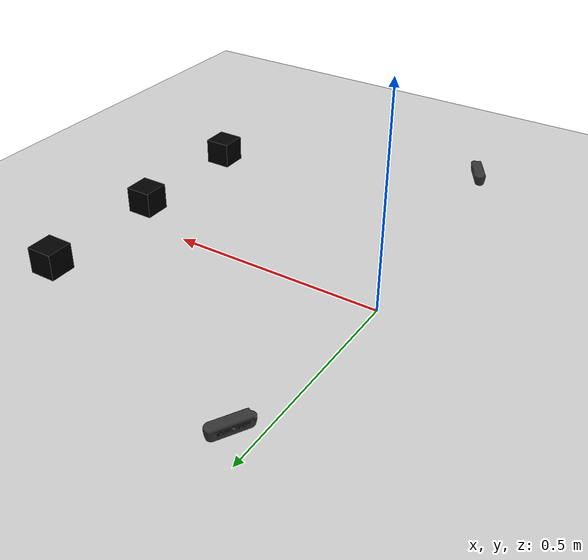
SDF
<sdf version='1.10'>
  <world name='panda_world'>
    <physics name='1ms' type='ignored'>
      <max_step_size>0.001</max_step_size>
      <real_time_factor>1</real_time_factor>
      <real_time_update_rate>1000</real_time_update_rate>
    </physics>
    <plugin
      filename="gz-sim-sensors-system"
      name="gz::sim::systems::Sensors">
      <render_engine>ogre2</render_engine>
    </plugin>

    <plugin filename="gz-sim-forcetorque-system"
        name="gz::sim::systems::ForceTorque"/>
    <plugin name='ignition::gazebo::systems::Physics' filename='ignition-gazebo-physics-system'/>
    <plugin name='ignition::gazebo::systems::UserCommands' filename='ignition-gazebo-user-commands-system'/>
    <plugin name='ignition::gazebo::systems::SceneBroadcaster' filename='ignition-gazebo-scene-broadcaster-system'/>
    <gui fullscreen='false'>
      <plugin name='3D View' filename='GzScene3D'>
        <ignition-gui>
          <title>3D View</title>
          <property type='bool' key='showTitleBar'>false</property>
          <property type='string' key='state'>docked</property>
        </ignition-gui>
        <engine>ogre2</engine>
        <scene>scene</scene>
        <ambient_light>0.4 0.4 0.4</ambient_light>
        <background_color>0.8 0.8 0.8</background_color>
        <camera_pose>2 2 2 0 0.5 -2.5</camera_pose>
      </plugin>
      <plugin name='World control' filename='WorldControl'>
        <ignition-gui>
          <title>World control</title>
          <property type='bool' key='showTitleBar'>false</property>
          <property type='bool' key='resizable'>false</property>
          <property type='double' key='height'>72</property>
          <property type='double' key='width'>121</property>
          <property type='double' key='z'>1</property>
          <property type='string' key='state'>floating</property>
          <anchors target='3D View'>
            <line own='left' target='left'/>
            <line own='bottom' target='bottom'/>
          </anchors>
        </ignition-gui>
        <play_pause>true</play_pause>
        <step>true</step>
        <start_paused>true</start_paused>
      </plugin>

    </gui>
    <gravity>0 0 -9.81</gravity>
    <magnetic_field>5.5644999999999998e-06 2.2875799999999999e-05 -4.2388400000000002e-05</magnetic_field>
    <atmosphere type='adiabatic'/>
    <scene>
      <ambient>0.400000006 0.400000006 0.400000006 1</ambient>
      <background>0.699999988 0.699999988 0.699999988 1</background>
      <shadows>true</shadows>
    </scene>

  <model name='ground_plane'>
      <static>true</static>
      <link name='link'>
        <collision name='collision'>
          <geometry>
            <plane>
              <normal>0 0 1</normal>
              <size>100 100</size>
            </plane>
          </geometry>
          <surface>
            <friction>
              <ode/>
            </friction>
            <bounce/>
            <contact/>
          </surface>
        </collision>
        <visual name='visual'>
          <geometry>
            <plane>
              <normal>0 0 1</normal>
              <size>100 100</size>
            </plane>
          </geometry>
          <material>
            <ambient>0.800000012 0.800000012 0.800000012 1</ambient>
            <diffuse>0.800000012 0.800000012 0.800000012 1</diffuse>
            <specular>0.800000012 0.800000012 0.800000012 1</specular>
          </material>
        </visual>
        <pose>0 0 0 0 0 0</pose>
        <inertial>
          <pose>0 0 0 0 0 0</pose>
          <mass>1</mass>
          <inertia>
            <ixx>1</ixx>
            <ixy>0</ixy>
            <ixz>0</ixz>
            <iyy>1</iyy>
            <iyz>0</iyz>
            <izz>1</izz>
          </inertia>
        </inertial>
        <enable_wind>false</enable_wind>
      </link>
      <pose>0 0 0 0 0 0</pose>
      <self_collide>false</self_collide>
    </model>

  <model name='object'>
      <plugin
        filename="gz-sim-pose-publisher-system"
        name="gz::sim::systems::PosePublisher">
        <publish_link_pose>false</publish_link_pose>
        <publish_collision_pose>false</publish_collision_pose>
        <publish_visual_pose>false</publish_visual_pose>
        <publish_nested_model_pose>true</publish_nested_model_pose>
        <update_rate>60</update_rate>
    </plugin>
      <pose>0 0.5 0.1 1.57 0 1.05</pose>
      <link name='link'>
        <pose>0 0 0 0 0 0</pose>
        <inertial>
          <mass>0.1</mass>
          <inertia>
            <ixx>0.000166667</ixx>
            <iyy>0.000166667</iyy>
            <izz>0.000166667</izz>
            <ixy>0</ixy>
            <ixz>0</ixz>
            <iyz>0</iyz>
          </inertia>
          <pose>0 0 0 0 0 0</pose>
        </inertial>

        <visual name='visual'>
          <geometry>
            <mesh>
              <uri>model://d435/meshes/d435.dae</uri>
              <scale>1 1 1</scale>
            </mesh>
          </geometry>
          <material>
            <ambient>0.2 0.2 0.2 1</ambient>
            <diffuse>0.2 0.2 0.2 1</diffuse>
            <specular>0.1 0.1 0.1 1</specular>
            <emissive>0 0 0 1</emissive>
          </material>
        </visual>
        <sensor name='depth_camera1' type='depth'>
          <pose>0 0 0 0 -1.57 -1.57</pose>
          <topic>depth_camera_1</topic>

          <update_rate>30</update_rate>
          <enable_metrics>false</enable_metrics>
          <camera>
            <pose>0 0 0 0 0 0</pose>
            <horizontal_fov>1.05</horizontal_fov>
            <image>
              <width>640</width>
              <height>480</height>
              <format>R_FLOAT32</format>
              <anti_aliasing>4</anti_aliasing>
            </image>
            <clip>
              <near>0.1</near>
              <far>10</far>
            </clip>
            <save enabled='false'>
              <path>__default__</path>
            </save>
            <noise>
              <type>none</type>
            </noise>
            <distortion>
              <k1>0</k1>
              <k2>0</k2>
              <k3>0</k3>
              <p1>0</p1>
              <p2>0</p2>
              <center>0.5 0.5</center>
            </distortion>
            <lens>
              <type>stereographic</type>
              <scale_to_hfov>true</scale_to_hfov>
              <cutoff_angle>1.57079632679</cutoff_angle>
              <env_texture_size>256</env_texture_size>
            </lens>
            <optical_frame_id>depth_optical_frame_1</optical_frame_id>
             <camera_info_topic>depth_camera_1/camera_info</camera_info_topic>
          </camera>
        </sensor>

         <sensor name="camera1" type="camera">
        <pose>0 0 0 0 -1.57 -1.57</pose>
        <update_rate>30</update_rate>
        <frame_id>depth_optical_frame_1</frame_id>
        <topic>/camera_1/image_raw</topic>
        <camera>
          <horizontal_fov>1.05</horizontal_fov>
          <image>
            <width>640</width>
            <height>480</height>
          </image>
          <clip>
            <near>0.1</near>
            <far>10.0</far>
          </clip>
          <noise>
            <type>gaussian</type>
            <mean>0.0</mean>
            <stddev>0.007</stddev>
          </noise>
          <lens>
            <type>custom</type>
            <scale_to_hfov>false</scale_to_hfov>
            <custom_function>
              <c1>1.1</c1>
              <c2>2.2</c2>
              <c3>3.3</c3>
              <f>1.2</f>
              <fun>sin</fun>
            </custom_function>
            <cutoff_angle>0.7505</cutoff_angle>
            <env_texture_size>128</env_texture_size>
            <intrinsics>
              <fx>280</fx>
              <fy>281</fy>
              <cx>162</cx>
              <cy>124</cy>
              <s>1.2</s>
            </intrinsics>
            <projection>
              <p_fx>282</p_fx>
              <p_fy>283</p_fy>
              <p_cx>163</p_cx>
              <p_cy>125</p_cy>
              <tx>1</tx>
              <ty>2</ty>
            </projection>
          </lens>
          <optical_frame_id>depth_optical_frame_1</optical_frame_id>
        </camera>
      </sensor>

        <enable_wind>false</enable_wind>
      </link>
      <static>true</static>
      <self_collide>false</self_collide>

      <plugin filename="gz-sim-label-system" name="gz::sim::systems::Label">
              <label>camera_1</label>
            </plugin>
    </model>

  <model name='object1'>
      <plugin
        filename="gz-sim-pose-publisher-system"
        name="gz::sim::systems::PosePublisher">
        <publish_link_pose>false</publish_link_pose>
        <publish_collision_pose>false</publish_collision_pose>
        <publish_visual_pose>false</publish_visual_pose>
        <publish_nested_model_pose>true</publish_nested_model_pose>
        <update_rate>60</update_rate>
      </plugin>
      <pose>0 -0.5 0.1 1.57 0 2.09</pose>
      <link name='link1'>
        <pose>0 0 0 0 0 0</pose>
        <inertial>
          <mass>0.1</mass>
          <inertia>
            <ixx>0.000166667</ixx>
            <iyy>0.000166667</iyy>
            <izz>0.000166667</izz>
            <ixy>0</ixy>
            <ixz>0</ixz>
            <iyz>0</iyz>
          </inertia>
          <pose>0 0 0 0 0 0</pose>
        </inertial>

        <visual name='visual'>
          <geometry>
            <mesh>
              <uri>model://d435/meshes/d435.dae</uri>
              <scale>1 1 1</scale>
            </mesh>
          </geometry>
          <material>
            <ambient>0.2 0.2 0.2 1</ambient>
            <diffuse>0.2 0.2 0.2 1</diffuse>
            <specular>0.1 0.1 0.1 1</specular>
            <emissive>0 0 0 1</emissive>
          </material>
        </visual>
        <sensor name='depth_camera2' type='depth_camera'>
          <pose>0 0 0 0 -1.57 -1.57</pose>
          <topic>depth_camera_2</topic>
          <update_rate>30</update_rate>
          <enable_metrics>false</enable_metrics>
          <camera>
            <pose>0 0 0 0 0 0</pose>
            <horizontal_fov>1.05</horizontal_fov>
            <image>
              <width>256</width>
              <height>256</height>
              <format>R_FLOAT32</format>
              <anti_aliasing>4</anti_aliasing>
            </image>
            <clip>
              <near>0.1</near>
              <far>10</far>
            </clip>
            <save enabled='false'>
              <path>__default__</path>
            </save>
            <noise>
              <type>none</type>
            </noise>
            <distortion>
              <k1>0</k1>
              <k2>0</k2>
              <k3>0</k3>
              <p1>0</p1>
              <p2>0</p2>
              <center>0.5 0.5</center>
            </distortion>
            <lens>
              <type>stereographic</type>
              <scale_to_hfov>true</scale_to_hfov>
              <cutoff_angle>1.57079632679</cutoff_angle>
              <env_texture_size>256</env_texture_size>
            </lens>
            <optical_frame_id>depth_optical_frame_2</optical_frame_id>
          </camera>
        </sensor>

        <sensor name="boundingbox_camera" type="boundingbox_camera">
        <pose>0 0 0 0 -1.57 -1.57</pose>
         <topic>boxes</topic>

         <camera>
           <box_type>3d</box_type>
           <horizontal_fov>1.047</horizontal_fov>
           <image>
             <width>800</width>
             <height>600</height>
           </image>
           <clip>
             <near>0.1</near>
             <far>10</far>
           </clip>
           <optical_frame_id>depth_optical_frame_2</optical_frame_id>
         </camera>
         <always_on>1</always_on>
         <update_rate>30</update_rate>
         <visualize>true</visualize>

       </sensor>
        <enable_wind>false</enable_wind>
      </link>
      <static>true</static>
      <self_collide>false</self_collide>

      <plugin filename="gz-sim-label-system" name="gz::sim::systems::Label">
              <label>camera_2</label>
            </plugin>
    </model>

  <model name='object2'>
      <plugin
        filename="gz-sim-pose-publisher-system"
        name="gz::sim::systems::PosePublisher">
        <publish_link_pose>false</publish_link_pose>
        <publish_collision_pose>false</publish_collision_pose>
        <publish_visual_pose>false</publish_visual_pose>
        <publish_nested_model_pose>true</publish_nested_model_pose>
        <update_rate>60</update_rate>
    </plugin>

     <pose>0.6 0.3 0.08 0 0 0</pose> <!-- x, y, z, roll, pitch, yaw -->
    <static>false</static>
    <link name='link3'>
       <pose>0 0 0 0 0 0</pose>
      <collision name='collision'>
        <geometry>
          <box>
            <size>0.06 0.06 0.06</size> <!-- 10cm x 10cm x 10cm -->
          </box>
        </geometry>
        <surface>
          <friction>
            <ode/>
          </friction>
          <bounce/>
          <contact/>
        </surface>
      </collision>
      <visual name='visual'>
        <geometry>
          <box>
            <size>0.06 0.06 0.06</size>
          </box>
        </geometry>
        <material>
          <ambient>0 0 0 1</ambient>
          <diffuse>0 0 0 1</diffuse>
          <specular>0.1 0.1 0.1 1</specular>
          <emissive>0 0 0 1</emissive>
        </material>

      </visual>
      <inertial>
        <mass>0.1</mass>
        <inertia>
          <ixx>0.000166667</ixx>
          <iyy>0.000166667</iyy>
          <izz>0.000166667</izz>
          <ixy>0</ixy>
          <ixz>0</ixz>
          <iyz>0</iyz>
        </inertia>
        <pose>0 0 0 0 0 0</pose>
      </inertial>
    </link>
    <plugin filename="gz-sim-label-system" name="gz::sim::systems::Label">
              <label>1</label>
            </plugin>
  </model>

  <model name='object3'>
      <plugin
        filename="gz-sim-pose-publisher-system"
        name="gz::sim::systems::PosePublisher">
        <publish_link_pose>false</publish_link_pose>
        <publish_collision_pose>false</publish_collision_pose>
        <publish_visual_pose>false</publish_visual_pose>
        <publish_nested_model_pose>true</publish_nested_model_pose>
        <update_rate>60</update_rate>
    </plugin>

     <pose>0.6 0 0.08 0 0 0</pose> <!-- x, y, z, roll, pitch, yaw -->
    <static>false</static>
    <link name='link3'>
       <pose>0 0 0 0 0 0</pose>
      <collision name='collision'>
        <geometry>
          <box>
            <size>0.06 0.06 0.06</size> <!-- 10cm x 10cm x 10cm -->
          </box>
        </geometry>
        <surface>
          <friction>
            <ode/>
          </friction>
          <bounce/>
          <contact/>
        </surface>
      </collision>
      <visual name='visual'>
        <geometry>
          <box>
            <size>0.06 0.06 0.06</size>
          </box>
        </geometry>
        <material>
          <ambient>0 0 0 1</ambient>
          <diffuse>0 0 0 1</diffuse>
          <specular>0.1 0.1 0.1 1</specular>
          <emissive>0 0 0 1</emissive>
        </material>

      </visual>
      <inertial>
        <mass>0.1</mass>
        <inertia>
          <ixx>0.000166667</ixx>
          <iyy>0.000166667</iyy>
          <izz>0.000166667</izz>
          <ixy>0</ixy>
          <ixz>0</ixz>
          <iyz>0</iyz>
        </inertia>
        <pose>0 0 0 0 0 0</pose>
      </inertial>
    </link>
    <plugin filename="gz-sim-label-system" name="gz::sim::systems::Label">
              <label>2</label>
            </plugin>
  </model>

   <model name='object4'>
      <plugin
        filename="gz-sim-pose-publisher-system"
        name="gz::sim::systems::PosePublisher">
        <publish_link_pose>false</publish_link_pose>
        <publish_collision_pose>false</publish_collision_pose>
        <publish_visual_pose>false</publish_visual_pose>
        <publish_nested_model_pose>true</publish_nested_model_pose>
        <update_rate>60</update_rate>
    </plugin>

     <pose>0.6 -0.3 0.08 0 0 0</pose> <!-- x, y, z, roll, pitch, yaw -->
    <static>false</static>
    <link name='link3'>
       <pose>0 0 0 0 0 0</pose>
      <collision name='collision'>
        <geometry>
          <box>
            <size>0.06 0.06 0.06</size> <!-- 10cm x 10cm x 10cm -->
          </box>
        </geometry>
        <surface>
          <friction>
            <ode/>
          </friction>
          <bounce/>
          <contact/>
        </surface>
      </collision>
      <visual name='visual'>
        <geometry>
          <box>
            <size>0.06 0.06 0.06</size>
          </box>
        </geometry>
        <material>
          <ambient>0 0 0 1</ambient>
          <diffuse>0 0 0 1</diffuse>
          <specular>0.1 0.1 0.1 1</specular>
          <emissive>0 0 0 1</emissive>
        </material>

      </visual>
      <inertial>
        <mass>0.1</mass>
        <inertia>
          <ixx>0.000166667</ixx>
          <iyy>0.000166667</iyy>
          <izz>0.000166667</izz>
          <ixy>0</ixy>
          <ixz>0</ixz>
          <iyz>0</iyz>
        </inertia>
        <pose>0 0 0 0 0 0</pose>
      </inertial>
    </link>
    <plugin filename="gz-sim-label-system" name="gz::sim::systems::Label">
              <label>3</label>
            </plugin>
  </model>

    <light name='sun' type='directional'>
      <pose>0 0 10 0 0 0</pose>
      <cast_shadows>true</cast_shadows>
      <intensity>1</intensity>
      <direction>-0.5 0.10000000000000001 -0.90000000000000002</direction>
      <diffuse>0.800000012 0.800000012 0.800000012 1</diffuse>
      <specular>0.200000003 0.200000003 0.200000003 1</specular>
      <attenuation>
        <range>1000</range>
        <linear>0.01</linear>
        <constant>0.90000000000000002</constant>
        <quadratic>0.001</quadratic>
      </attenuation>
      <spot>
        <inner_angle>0</inner_angle>
        <outer_angle>0</outer_angle>
        <falloff>0</falloff>
      </spot>
    </light>
  </world>
</sdf>
